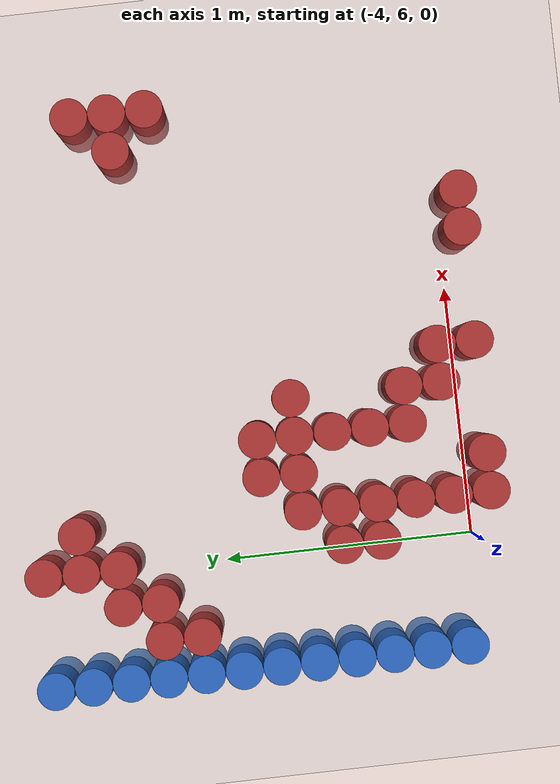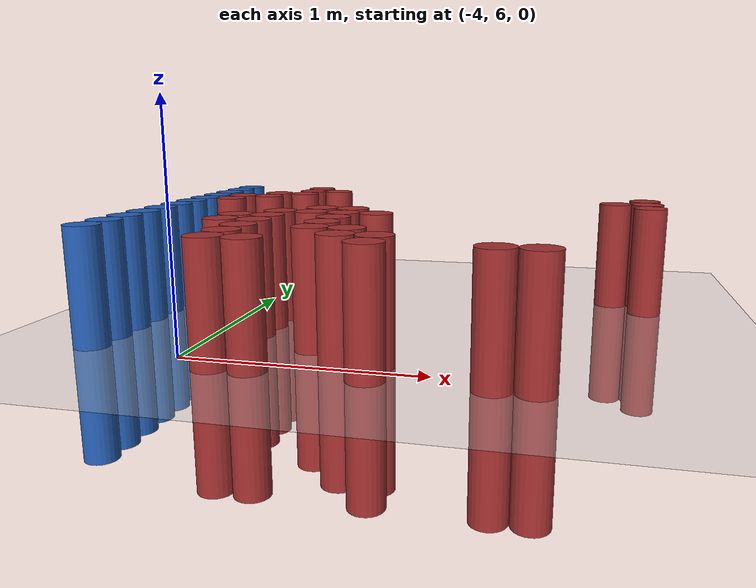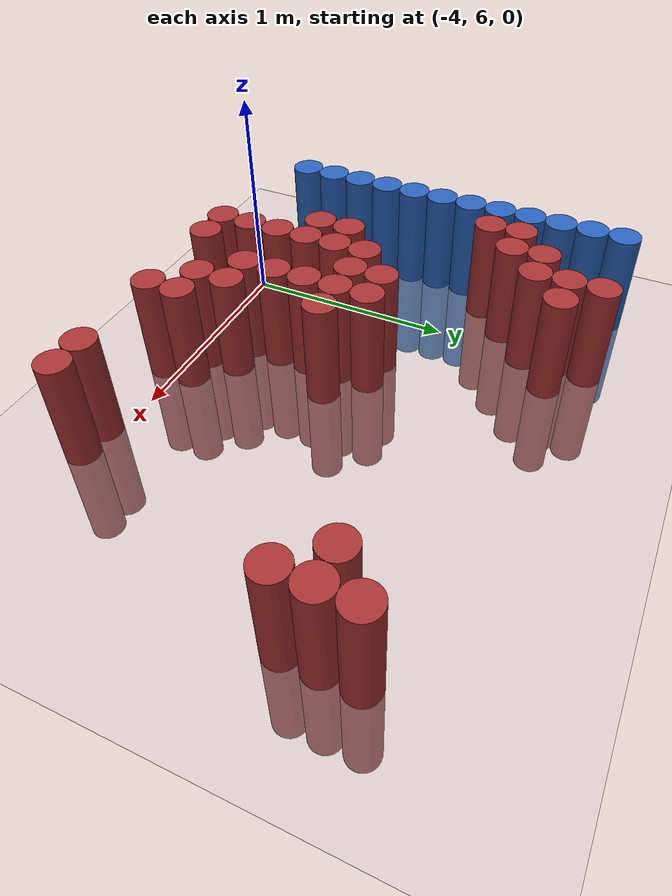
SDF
<sdf version="1.6">
 <world name="default">
  <model name="ground_plane">
   <static>1</static>
   <link name="link">
    <collision name="collision">
     <geometry><plane><normal>0 0 1</normal><size>100 100</size></plane></geometry>
     <surface><friction><ode><mu>100</mu><mu2>50</mu2></ode></friction></surface>
    </collision>
    <visual name="visual">
     <cast_shadows>0</cast_shadows>
     <geometry><plane><normal>0 0 1</normal><size>100 100</size></plane></geometry>
     <material>
      <script><uri>file://media/materials/scripts/gazebo.material</uri><name>Gazebo/Grey</name></script>
     </material>
    </visual>
   </link>
  </model>
  <model name="unit_cylinder_102">
   <static>1</static>
   <pose>-4.425000 6.075000 0.000000 0.000000 0.000000 0.000000</pose>
   <link name="link">
    <inertial>
     <mass>1</mass>
     <inertia><ixx>0.145833</ixx><ixy>0</ixy><ixz>0</ixz><iyy>0.145833</iyy><iyz>0</iyz><izz>0.125</izz></inertia>
    </inertial>
    <collision name="collision">
     <geometry><cylinder><radius>0.075000</radius><length>1</length></cylinder></geometry>
    </collision>
    <visual name="visual">
     <geometry><cylinder><radius>0.075000</radius><length>1</length></cylinder></geometry>
     <material>
      <ambient>0.152000 0.379000 0.720000 1</ambient>
      <diffuse>0.152000 0.379000 0.720000 1</diffuse>
     </material>
     <material>
      <script><name>Gazebo/Grey</name><uri>file://media/materials/scripts/gazebo.material</uri></script>
     </material>
    </visual>
   </link>
  </model>
  <model name="unit_cylinder_103">
   <static>1</static>
   <pose>-4.425000 6.225000 0.000000 0.000000 0.000000 0.000000</pose>
   <link name="link">
    <inertial>
     <mass>1</mass>
     <inertia><ixx>0.145833</ixx><ixy>0</ixy><ixz>0</ixz><iyy>0.145833</iyy><iyz>0</iyz><izz>0.125</izz></inertia>
    </inertial>
    <collision name="collision">
     <geometry><cylinder><radius>0.075000</radius><length>1</length></cylinder></geometry>
    </collision>
    <visual name="visual">
     <geometry><cylinder><radius>0.075000</radius><length>1</length></cylinder></geometry>
     <material>
      <ambient>0.152000 0.379000 0.720000 1</ambient>
      <diffuse>0.152000 0.379000 0.720000 1</diffuse>
     </material>
     <material>
      <script><name>Gazebo/Grey</name><uri>file://media/materials/scripts/gazebo.material</uri></script>
     </material>
    </visual>
   </link>
  </model>
  <model name="unit_cylinder_104">
   <static>1</static>
   <pose>-4.425000 6.375000 0.000000 0.000000 0.000000 0.000000</pose>
   <link name="link">
    <inertial>
     <mass>1</mass>
     <inertia><ixx>0.145833</ixx><ixy>0</ixy><ixz>0</ixz><iyy>0.145833</iyy><iyz>0</iyz><izz>0.125</izz></inertia>
    </inertial>
    <collision name="collision">
     <geometry><cylinder><radius>0.075000</radius><length>1</length></cylinder></geometry>
    </collision>
    <visual name="visual">
     <geometry><cylinder><radius>0.075000</radius><length>1</length></cylinder></geometry>
     <material>
      <ambient>0.152000 0.379000 0.720000 1</ambient>
      <diffuse>0.152000 0.379000 0.720000 1</diffuse>
     </material>
     <material>
      <script><name>Gazebo/Grey</name><uri>file://media/materials/scripts/gazebo.material</uri></script>
     </material>
    </visual>
   </link>
  </model>
  <model name="unit_cylinder_105">
   <static>1</static>
   <pose>-4.425000 6.525000 0.000000 0.000000 0.000000 0.000000</pose>
   <link name="link">
    <inertial>
     <mass>1</mass>
     <inertia><ixx>0.145833</ixx><ixy>0</ixy><ixz>0</ixz><iyy>0.145833</iyy><iyz>0</iyz><izz>0.125</izz></inertia>
    </inertial>
    <collision name="collision">
     <geometry><cylinder><radius>0.075000</radius><length>1</length></cylinder></geometry>
    </collision>
    <visual name="visual">
     <geometry><cylinder><radius>0.075000</radius><length>1</length></cylinder></geometry>
     <material>
      <ambient>0.152000 0.379000 0.720000 1</ambient>
      <diffuse>0.152000 0.379000 0.720000 1</diffuse>
     </material>
     <material>
      <script><name>Gazebo/Grey</name><uri>file://media/materials/scripts/gazebo.material</uri></script>
     </material>
    </visual>
   </link>
  </model>
  <model name="unit_cylinder_106">
   <static>1</static>
   <pose>-4.425000 6.675000 0.000000 0.000000 0.000000 0.000000</pose>
   <link name="link">
    <inertial>
     <mass>1</mass>
     <inertia><ixx>0.145833</ixx><ixy>0</ixy><ixz>0</ixz><iyy>0.145833</iyy><iyz>0</iyz><izz>0.125</izz></inertia>
    </inertial>
    <collision name="collision">
     <geometry><cylinder><radius>0.075000</radius><length>1</length></cylinder></geometry>
    </collision>
    <visual name="visual">
     <geometry><cylinder><radius>0.075000</radius><length>1</length></cylinder></geometry>
     <material>
      <ambient>0.152000 0.379000 0.720000 1</ambient>
      <diffuse>0.152000 0.379000 0.720000 1</diffuse>
     </material>
     <material>
      <script><name>Gazebo/Grey</name><uri>file://media/materials/scripts/gazebo.material</uri></script>
     </material>
    </visual>
   </link>
  </model>
  <model name="unit_cylinder_107">
   <static>1</static>
   <pose>-4.425000 6.825000 0.000000 0.000000 0.000000 0.000000</pose>
   <link name="link">
    <inertial>
     <mass>1</mass>
     <inertia><ixx>0.145833</ixx><ixy>0</ixy><ixz>0</ixz><iyy>0.145833</iyy><iyz>0</iyz><izz>0.125</izz></inertia>
    </inertial>
    <collision name="collision">
     <geometry><cylinder><radius>0.075000</radius><length>1</length></cylinder></geometry>
    </collision>
    <visual name="visual">
     <geometry><cylinder><radius>0.075000</radius><length>1</length></cylinder></geometry>
     <material>
      <ambient>0.152000 0.379000 0.720000 1</ambient>
      <diffuse>0.152000 0.379000 0.720000 1</diffuse>
     </material>
     <material>
      <script><name>Gazebo/Grey</name><uri>file://media/materials/scripts/gazebo.material</uri></script>
     </material>
    </visual>
   </link>
  </model>
  <model name="unit_cylinder_108">
   <static>1</static>
   <pose>-4.425000 6.975000 0.000000 0.000000 0.000000 0.000000</pose>
   <link name="link">
    <inertial>
     <mass>1</mass>
     <inertia><ixx>0.145833</ixx><ixy>0</ixy><ixz>0</ixz><iyy>0.145833</iyy><iyz>0</iyz><izz>0.125</izz></inertia>
    </inertial>
    <collision name="collision">
     <geometry><cylinder><radius>0.075000</radius><length>1</length></cylinder></geometry>
    </collision>
    <visual name="visual">
     <geometry><cylinder><radius>0.075000</radius><length>1</length></cylinder></geometry>
     <material>
      <ambient>0.152000 0.379000 0.720000 1</ambient>
      <diffuse>0.152000 0.379000 0.720000 1</diffuse>
     </material>
     <material>
      <script><name>Gazebo/Grey</name><uri>file://media/materials/scripts/gazebo.material</uri></script>
     </material>
    </visual>
   </link>
  </model>
  <model name="unit_cylinder_109">
   <static>1</static>
   <pose>-4.425000 7.125000 0.000000 0.000000 0.000000 0.000000</pose>
   <link name="link">
    <inertial>
     <mass>1</mass>
     <inertia><ixx>0.145833</ixx><ixy>0</ixy><ixz>0</ixz><iyy>0.145833</iyy><iyz>0</iyz><izz>0.125</izz></inertia>
    </inertial>
    <collision name="collision">
     <geometry><cylinder><radius>0.075000</radius><length>1</length></cylinder></geometry>
    </collision>
    <visual name="visual">
     <geometry><cylinder><radius>0.075000</radius><length>1</length></cylinder></geometry>
     <material>
      <ambient>0.152000 0.379000 0.720000 1</ambient>
      <diffuse>0.152000 0.379000 0.720000 1</diffuse>
     </material>
     <material>
      <script><name>Gazebo/Grey</name><uri>file://media/materials/scripts/gazebo.material</uri></script>
     </material>
    </visual>
   </link>
  </model>
  <model name="unit_cylinder_110">
   <static>1</static>
   <pose>-4.425000 7.275000 0.000000 0.000000 0.000000 0.000000</pose>
   <link name="link">
    <inertial>
     <mass>1</mass>
     <inertia><ixx>0.145833</ixx><ixy>0</ixy><ixz>0</ixz><iyy>0.145833</iyy><iyz>0</iyz><izz>0.125</izz></inertia>
    </inertial>
    <collision name="collision">
     <geometry><cylinder><radius>0.075000</radius><length>1</length></cylinder></geometry>
    </collision>
    <visual name="visual">
     <geometry><cylinder><radius>0.075000</radius><length>1</length></cylinder></geometry>
     <material>
      <ambient>0.152000 0.379000 0.720000 1</ambient>
      <diffuse>0.152000 0.379000 0.720000 1</diffuse>
     </material>
     <material>
      <script><name>Gazebo/Grey</name><uri>file://media/materials/scripts/gazebo.material</uri></script>
     </material>
    </visual>
   </link>
  </model>
  <model name="unit_cylinder_111">
   <static>1</static>
   <pose>-4.425000 7.425000 0.000000 0.000000 0.000000 0.000000</pose>
   <link name="link">
    <inertial>
     <mass>1</mass>
     <inertia><ixx>0.145833</ixx><ixy>0</ixy><ixz>0</ixz><iyy>0.145833</iyy><iyz>0</iyz><izz>0.125</izz></inertia>
    </inertial>
    <collision name="collision">
     <geometry><cylinder><radius>0.075000</radius><length>1</length></cylinder></geometry>
    </collision>
    <visual name="visual">
     <geometry><cylinder><radius>0.075000</radius><length>1</length></cylinder></geometry>
     <material>
      <ambient>0.152000 0.379000 0.720000 1</ambient>
      <diffuse>0.152000 0.379000 0.720000 1</diffuse>
     </material>
     <material>
      <script><name>Gazebo/Grey</name><uri>file://media/materials/scripts/gazebo.material</uri></script>
     </material>
    </visual>
   </link>
  </model>
  <model name="unit_cylinder_112">
   <static>1</static>
   <pose>-4.425000 7.575000 0.000000 0.000000 0.000000 0.000000</pose>
   <link name="link">
    <inertial>
     <mass>1</mass>
     <inertia><ixx>0.145833</ixx><ixy>0</ixy><ixz>0</ixz><iyy>0.145833</iyy><iyz>0</iyz><izz>0.125</izz></inertia>
    </inertial>
    <collision name="collision">
     <geometry><cylinder><radius>0.075000</radius><length>1</length></cylinder></geometry>
    </collision>
    <visual name="visual">
     <geometry><cylinder><radius>0.075000</radius><length>1</length></cylinder></geometry>
     <material>
      <ambient>0.152000 0.379000 0.720000 1</ambient>
      <diffuse>0.152000 0.379000 0.720000 1</diffuse>
     </material>
     <material>
      <script><name>Gazebo/Grey</name><uri>file://media/materials/scripts/gazebo.material</uri></script>
     </material>
    </visual>
   </link>
  </model>
  <model name="unit_cylinder_113">
   <static>1</static>
   <pose>-4.425000 7.725000 0.000000 0.000000 0.000000 0.000000</pose>
   <link name="link">
    <inertial>
     <mass>1</mass>
     <inertia><ixx>0.145833</ixx><ixy>0</ixy><ixz>0</ixz><iyy>0.145833</iyy><iyz>0</iyz><izz>0.125</izz></inertia>
    </inertial>
    <collision name="collision">
     <geometry><cylinder><radius>0.075000</radius><length>1</length></cylinder></geometry>
    </collision>
    <visual name="visual">
     <geometry><cylinder><radius>0.075000</radius><length>1</length></cylinder></geometry>
     <material>
      <ambient>0.152000 0.379000 0.720000 1</ambient>
      <diffuse>0.152000 0.379000 0.720000 1</diffuse>
     </material>
     <material>
      <script><name>Gazebo/Grey</name><uri>file://media/materials/scripts/gazebo.material</uri></script>
     </material>
    </visual>
   </link>
  </model>
  <model name="unit_cylinder_129">
   <static>1</static>
   <pose>-4.275000 7.125000 0.000000 0.000000 0.000000 0.000000</pose>
   <link name="link">
    <inertial>
     <mass>1</mass>
     <inertia><ixx>0.145833</ixx><ixy>0</ixy><ixz>0</ixz><iyy>0.145833</iyy><iyz>0</iyz><izz>0.125</izz></inertia>
    </inertial>
    <collision name="collision">
     <geometry><cylinder><radius>0.075000</radius><length>1</length></cylinder></geometry>
    </collision>
    <visual name="visual">
     <geometry><cylinder><radius>0.075000</radius><length>1</length></cylinder></geometry>
     <material>
      <ambient>0.648000 0.192000 0.192000 1</ambient>
      <diffuse>0.648000 0.192000 0.192000 1</diffuse>
     </material>
     <material>
      <script><name>Gazebo/Grey</name><uri>file://media/materials/scripts/gazebo.material</uri></script>
     </material>
    </visual>
   </link>
  </model>
  <model name="unit_cylinder_130">
   <static>1</static>
   <pose>-4.275000 7.275000 0.000000 0.000000 0.000000 0.000000</pose>
   <link name="link">
    <inertial>
     <mass>1</mass>
     <inertia><ixx>0.145833</ixx><ixy>0</ixy><ixz>0</ixz><iyy>0.145833</iyy><iyz>0</iyz><izz>0.125</izz></inertia>
    </inertial>
    <collision name="collision">
     <geometry><cylinder><radius>0.075000</radius><length>1</length></cylinder></geometry>
    </collision>
    <visual name="visual">
     <geometry><cylinder><radius>0.075000</radius><length>1</length></cylinder></geometry>
     <material>
      <ambient>0.648000 0.192000 0.192000 1</ambient>
      <diffuse>0.648000 0.192000 0.192000 1</diffuse>
     </material>
     <material>
      <script><name>Gazebo/Grey</name><uri>file://media/materials/scripts/gazebo.material</uri></script>
     </material>
    </visual>
   </link>
  </model>
  <model name="unit_cylinder_138">
   <static>1</static>
   <pose>-4.125000 7.275000 0.000000 0.000000 0.000000 0.000000</pose>
   <link name="link">
    <inertial>
     <mass>1</mass>
     <inertia><ixx>0.145833</ixx><ixy>0</ixy><ixz>0</ixz><iyy>0.145833</iyy><iyz>0</iyz><izz>0.125</izz></inertia>
    </inertial>
    <collision name="collision">
     <geometry><cylinder><radius>0.075000</radius><length>1</length></cylinder></geometry>
    </collision>
    <visual name="visual">
     <geometry><cylinder><radius>0.075000</radius><length>1</length></cylinder></geometry>
     <material>
      <ambient>0.648000 0.192000 0.192000 1</ambient>
      <diffuse>0.648000 0.192000 0.192000 1</diffuse>
     </material>
     <material>
      <script><name>Gazebo/Grey</name><uri>file://media/materials/scripts/gazebo.material</uri></script>
     </material>
    </visual>
   </link>
  </model>
  <model name="unit_cylinder_139">
   <static>1</static>
   <pose>-4.125000 7.425000 0.000000 0.000000 0.000000 0.000000</pose>
   <link name="link">
    <inertial>
     <mass>1</mass>
     <inertia><ixx>0.145833</ixx><ixy>0</ixy><ixz>0</ixz><iyy>0.145833</iyy><iyz>0</iyz><izz>0.125</izz></inertia>
    </inertial>
    <collision name="collision">
     <geometry><cylinder><radius>0.075000</radius><length>1</length></cylinder></geometry>
    </collision>
    <visual name="visual">
     <geometry><cylinder><radius>0.075000</radius><length>1</length></cylinder></geometry>
     <material>
      <ambient>0.648000 0.192000 0.192000 1</ambient>
      <diffuse>0.648000 0.192000 0.192000 1</diffuse>
     </material>
     <material>
      <script><name>Gazebo/Grey</name><uri>file://media/materials/scripts/gazebo.material</uri></script>
     </material>
    </visual>
   </link>
  </model>
  <model name="unit_cylinder_143">
   <static>1</static>
   <pose>-3.975000 6.375000 0.000000 0.000000 0.000000 0.000000</pose>
   <link name="link">
    <inertial>
     <mass>1</mass>
     <inertia><ixx>0.145833</ixx><ixy>0</ixy><ixz>0</ixz><iyy>0.145833</iyy><iyz>0</iyz><izz>0.125</izz></inertia>
    </inertial>
    <collision name="collision">
     <geometry><cylinder><radius>0.075000</radius><length>1</length></cylinder></geometry>
    </collision>
    <visual name="visual">
     <geometry><cylinder><radius>0.075000</radius><length>1</length></cylinder></geometry>
     <material>
      <ambient>0.648000 0.192000 0.192000 1</ambient>
      <diffuse>0.648000 0.192000 0.192000 1</diffuse>
     </material>
     <material>
      <script><name>Gazebo/Grey</name><uri>file://media/materials/scripts/gazebo.material</uri></script>
     </material>
    </visual>
   </link>
  </model>
  <model name="unit_cylinder_144">
   <static>1</static>
   <pose>-3.975000 6.525000 0.000000 0.000000 0.000000 0.000000</pose>
   <link name="link">
    <inertial>
     <mass>1</mass>
     <inertia><ixx>0.145833</ixx><ixy>0</ixy><ixz>0</ixz><iyy>0.145833</iyy><iyz>0</iyz><izz>0.125</izz></inertia>
    </inertial>
    <collision name="collision">
     <geometry><cylinder><radius>0.075000</radius><length>1</length></cylinder></geometry>
    </collision>
    <visual name="visual">
     <geometry><cylinder><radius>0.075000</radius><length>1</length></cylinder></geometry>
     <material>
      <ambient>0.648000 0.192000 0.192000 1</ambient>
      <diffuse>0.648000 0.192000 0.192000 1</diffuse>
     </material>
     <material>
      <script><name>Gazebo/Grey</name><uri>file://media/materials/scripts/gazebo.material</uri></script>
     </material>
    </visual>
   </link>
  </model>
  <model name="unit_cylinder_145">
   <static>1</static>
   <pose>-3.975000 7.425000 0.000000 0.000000 0.000000 0.000000</pose>
   <link name="link">
    <inertial>
     <mass>1</mass>
     <inertia><ixx>0.145833</ixx><ixy>0</ixy><ixz>0</ixz><iyy>0.145833</iyy><iyz>0</iyz><izz>0.125</izz></inertia>
    </inertial>
    <collision name="collision">
     <geometry><cylinder><radius>0.075000</radius><length>1</length></cylinder></geometry>
    </collision>
    <visual name="visual">
     <geometry><cylinder><radius>0.075000</radius><length>1</length></cylinder></geometry>
     <material>
      <ambient>0.648000 0.192000 0.192000 1</ambient>
      <diffuse>0.648000 0.192000 0.192000 1</diffuse>
     </material>
     <material>
      <script><name>Gazebo/Grey</name><uri>file://media/materials/scripts/gazebo.material</uri></script>
     </material>
    </visual>
   </link>
  </model>
  <model name="unit_cylinder_146">
   <static>1</static>
   <pose>-3.975000 7.575000 0.000000 0.000000 0.000000 0.000000</pose>
   <link name="link">
    <inertial>
     <mass>1</mass>
     <inertia><ixx>0.145833</ixx><ixy>0</ixy><ixz>0</ixz><iyy>0.145833</iyy><iyz>0</iyz><izz>0.125</izz></inertia>
    </inertial>
    <collision name="collision">
     <geometry><cylinder><radius>0.075000</radius><length>1</length></cylinder></geometry>
    </collision>
    <visual name="visual">
     <geometry><cylinder><radius>0.075000</radius><length>1</length></cylinder></geometry>
     <material>
      <ambient>0.648000 0.192000 0.192000 1</ambient>
      <diffuse>0.648000 0.192000 0.192000 1</diffuse>
     </material>
     <material>
      <script><name>Gazebo/Grey</name><uri>file://media/materials/scripts/gazebo.material</uri></script>
     </material>
    </visual>
   </link>
  </model>
  <model name="unit_cylinder_147">
   <static>1</static>
   <pose>-3.975000 7.725000 0.000000 0.000000 0.000000 0.000000</pose>
   <link name="link">
    <inertial>
     <mass>1</mass>
     <inertia><ixx>0.145833</ixx><ixy>0</ixy><ixz>0</ixz><iyy>0.145833</iyy><iyz>0</iyz><izz>0.125</izz></inertia>
    </inertial>
    <collision name="collision">
     <geometry><cylinder><radius>0.075000</radius><length>1</length></cylinder></geometry>
    </collision>
    <visual name="visual">
     <geometry><cylinder><radius>0.075000</radius><length>1</length></cylinder></geometry>
     <material>
      <ambient>0.648000 0.192000 0.192000 1</ambient>
      <diffuse>0.648000 0.192000 0.192000 1</diffuse>
     </material>
     <material>
      <script><name>Gazebo/Grey</name><uri>file://media/materials/scripts/gazebo.material</uri></script>
     </material>
    </visual>
   </link>
  </model>
  <model name="unit_cylinder_151">
   <static>1</static>
   <pose>-3.825000 5.925000 0.000000 0.000000 0.000000 0.000000</pose>
   <link name="link">
    <inertial>
     <mass>1</mass>
     <inertia><ixx>0.145833</ixx><ixy>0</ixy><ixz>0</ixz><iyy>0.145833</iyy><iyz>0</iyz><izz>0.125</izz></inertia>
    </inertial>
    <collision name="collision">
     <geometry><cylinder><radius>0.075000</radius><length>1</length></cylinder></geometry>
    </collision>
    <visual name="visual">
     <geometry><cylinder><radius>0.075000</radius><length>1</length></cylinder></geometry>
     <material>
      <ambient>0.648000 0.192000 0.192000 1</ambient>
      <diffuse>0.648000 0.192000 0.192000 1</diffuse>
     </material>
     <material>
      <script><name>Gazebo/Grey</name><uri>file://media/materials/scripts/gazebo.material</uri></script>
     </material>
    </visual>
   </link>
  </model>
  <model name="unit_cylinder_152">
   <static>1</static>
   <pose>-3.825000 6.075000 0.000000 0.000000 0.000000 0.000000</pose>
   <link name="link">
    <inertial>
     <mass>1</mass>
     <inertia><ixx>0.145833</ixx><ixy>0</ixy><ixz>0</ixz><iyy>0.145833</iyy><iyz>0</iyz><izz>0.125</izz></inertia>
    </inertial>
    <collision name="collision">
     <geometry><cylinder><radius>0.075000</radius><length>1</length></cylinder></geometry>
    </collision>
    <visual name="visual">
     <geometry><cylinder><radius>0.075000</radius><length>1</length></cylinder></geometry>
     <material>
      <ambient>0.648000 0.192000 0.192000 1</ambient>
      <diffuse>0.648000 0.192000 0.192000 1</diffuse>
     </material>
     <material>
      <script><name>Gazebo/Grey</name><uri>file://media/materials/scripts/gazebo.material</uri></script>
     </material>
    </visual>
   </link>
  </model>
  <model name="unit_cylinder_153">
   <static>1</static>
   <pose>-3.825000 6.225000 0.000000 0.000000 0.000000 0.000000</pose>
   <link name="link">
    <inertial>
     <mass>1</mass>
     <inertia><ixx>0.145833</ixx><ixy>0</ixy><ixz>0</ixz><iyy>0.145833</iyy><iyz>0</iyz><izz>0.125</izz></inertia>
    </inertial>
    <collision name="collision">
     <geometry><cylinder><radius>0.075000</radius><length>1</length></cylinder></geometry>
    </collision>
    <visual name="visual">
     <geometry><cylinder><radius>0.075000</radius><length>1</length></cylinder></geometry>
     <material>
      <ambient>0.648000 0.192000 0.192000 1</ambient>
      <diffuse>0.648000 0.192000 0.192000 1</diffuse>
     </material>
     <material>
      <script><name>Gazebo/Grey</name><uri>file://media/materials/scripts/gazebo.material</uri></script>
     </material>
    </visual>
   </link>
  </model>
  <model name="unit_cylinder_154">
   <static>1</static>
   <pose>-3.825000 6.375000 0.000000 0.000000 0.000000 0.000000</pose>
   <link name="link">
    <inertial>
     <mass>1</mass>
     <inertia><ixx>0.145833</ixx><ixy>0</ixy><ixz>0</ixz><iyy>0.145833</iyy><iyz>0</iyz><izz>0.125</izz></inertia>
    </inertial>
    <collision name="collision">
     <geometry><cylinder><radius>0.075000</radius><length>1</length></cylinder></geometry>
    </collision>
    <visual name="visual">
     <geometry><cylinder><radius>0.075000</radius><length>1</length></cylinder></geometry>
     <material>
      <ambient>0.648000 0.192000 0.192000 1</ambient>
      <diffuse>0.648000 0.192000 0.192000 1</diffuse>
     </material>
     <material>
      <script><name>Gazebo/Grey</name><uri>file://media/materials/scripts/gazebo.material</uri></script>
     </material>
    </visual>
   </link>
  </model>
  <model name="unit_cylinder_155">
   <static>1</static>
   <pose>-3.825000 6.525000 0.000000 0.000000 0.000000 0.000000</pose>
   <link name="link">
    <inertial>
     <mass>1</mass>
     <inertia><ixx>0.145833</ixx><ixy>0</ixy><ixz>0</ixz><iyy>0.145833</iyy><iyz>0</iyz><izz>0.125</izz></inertia>
    </inertial>
    <collision name="collision">
     <geometry><cylinder><radius>0.075000</radius><length>1</length></cylinder></geometry>
    </collision>
    <visual name="visual">
     <geometry><cylinder><radius>0.075000</radius><length>1</length></cylinder></geometry>
     <material>
      <ambient>0.648000 0.192000 0.192000 1</ambient>
      <diffuse>0.648000 0.192000 0.192000 1</diffuse>
     </material>
     <material>
      <script><name>Gazebo/Grey</name><uri>file://media/materials/scripts/gazebo.material</uri></script>
     </material>
    </visual>
   </link>
  </model>
  <model name="unit_cylinder_156">
   <static>1</static>
   <pose>-3.825000 6.675000 0.000000 0.000000 0.000000 0.000000</pose>
   <link name="link">
    <inertial>
     <mass>1</mass>
     <inertia><ixx>0.145833</ixx><ixy>0</ixy><ixz>0</ixz><iyy>0.145833</iyy><iyz>0</iyz><izz>0.125</izz></inertia>
    </inertial>
    <collision name="collision">
     <geometry><cylinder><radius>0.075000</radius><length>1</length></cylinder></geometry>
    </collision>
    <visual name="visual">
     <geometry><cylinder><radius>0.075000</radius><length>1</length></cylinder></geometry>
     <material>
      <ambient>0.648000 0.192000 0.192000 1</ambient>
      <diffuse>0.648000 0.192000 0.192000 1</diffuse>
     </material>
     <material>
      <script><name>Gazebo/Grey</name><uri>file://media/materials/scripts/gazebo.material</uri></script>
     </material>
    </visual>
   </link>
  </model>
  <model name="unit_cylinder_157">
   <static>1</static>
   <pose>-3.825000 7.575000 0.000000 0.000000 0.000000 0.000000</pose>
   <link name="link">
    <inertial>
     <mass>1</mass>
     <inertia><ixx>0.145833</ixx><ixy>0</ixy><ixz>0</ixz><iyy>0.145833</iyy><iyz>0</iyz><izz>0.125</izz></inertia>
    </inertial>
    <collision name="collision">
     <geometry><cylinder><radius>0.075000</radius><length>1</length></cylinder></geometry>
    </collision>
    <visual name="visual">
     <geometry><cylinder><radius>0.075000</radius><length>1</length></cylinder></geometry>
     <material>
      <ambient>0.648000 0.192000 0.192000 1</ambient>
      <diffuse>0.648000 0.192000 0.192000 1</diffuse>
     </material>
     <material>
      <script><name>Gazebo/Grey</name><uri>file://media/materials/scripts/gazebo.material</uri></script>
     </material>
    </visual>
   </link>
  </model>
  <model name="unit_cylinder_164">
   <static>1</static>
   <pose>-3.675000 5.925000 0.000000 0.000000 0.000000 0.000000</pose>
   <link name="link">
    <inertial>
     <mass>1</mass>
     <inertia><ixx>0.145833</ixx><ixy>0</ixy><ixz>0</ixz><iyy>0.145833</iyy><iyz>0</iyz><izz>0.125</izz></inertia>
    </inertial>
    <collision name="collision">
     <geometry><cylinder><radius>0.075000</radius><length>1</length></cylinder></geometry>
    </collision>
    <visual name="visual">
     <geometry><cylinder><radius>0.075000</radius><length>1</length></cylinder></geometry>
     <material>
      <ambient>0.648000 0.192000 0.192000 1</ambient>
      <diffuse>0.648000 0.192000 0.192000 1</diffuse>
     </material>
     <material>
      <script><name>Gazebo/Grey</name><uri>file://media/materials/scripts/gazebo.material</uri></script>
     </material>
    </visual>
   </link>
  </model>
  <model name="unit_cylinder_165">
   <static>1</static>
   <pose>-3.675000 6.675000 0.000000 0.000000 0.000000 0.000000</pose>
   <link name="link">
    <inertial>
     <mass>1</mass>
     <inertia><ixx>0.145833</ixx><ixy>0</ixy><ixz>0</ixz><iyy>0.145833</iyy><iyz>0</iyz><izz>0.125</izz></inertia>
    </inertial>
    <collision name="collision">
     <geometry><cylinder><radius>0.075000</radius><length>1</length></cylinder></geometry>
    </collision>
    <visual name="visual">
     <geometry><cylinder><radius>0.075000</radius><length>1</length></cylinder></geometry>
     <material>
      <ambient>0.648000 0.192000 0.192000 1</ambient>
      <diffuse>0.648000 0.192000 0.192000 1</diffuse>
     </material>
     <material>
      <script><name>Gazebo/Grey</name><uri>file://media/materials/scripts/gazebo.material</uri></script>
     </material>
    </visual>
   </link>
  </model>
  <model name="unit_cylinder_166">
   <static>1</static>
   <pose>-3.675000 6.825000 0.000000 0.000000 0.000000 0.000000</pose>
   <link name="link">
    <inertial>
     <mass>1</mass>
     <inertia><ixx>0.145833</ixx><ixy>0</ixy><ixz>0</ixz><iyy>0.145833</iyy><iyz>0</iyz><izz>0.125</izz></inertia>
    </inertial>
    <collision name="collision">
     <geometry><cylinder><radius>0.075000</radius><length>1</length></cylinder></geometry>
    </collision>
    <visual name="visual">
     <geometry><cylinder><radius>0.075000</radius><length>1</length></cylinder></geometry>
     <material>
      <ambient>0.648000 0.192000 0.192000 1</ambient>
      <diffuse>0.648000 0.192000 0.192000 1</diffuse>
     </material>
     <material>
      <script><name>Gazebo/Grey</name><uri>file://media/materials/scripts/gazebo.material</uri></script>
     </material>
    </visual>
   </link>
  </model>
  <model name="unit_cylinder_172">
   <static>1</static>
   <pose>-3.525000 6.225000 0.000000 0.000000 0.000000 0.000000</pose>
   <link name="link">
    <inertial>
     <mass>1</mass>
     <inertia><ixx>0.145833</ixx><ixy>0</ixy><ixz>0</ixz><iyy>0.145833</iyy><iyz>0</iyz><izz>0.125</izz></inertia>
    </inertial>
    <collision name="collision">
     <geometry><cylinder><radius>0.075000</radius><length>1</length></cylinder></geometry>
    </collision>
    <visual name="visual">
     <geometry><cylinder><radius>0.075000</radius><length>1</length></cylinder></geometry>
     <material>
      <ambient>0.648000 0.192000 0.192000 1</ambient>
      <diffuse>0.648000 0.192000 0.192000 1</diffuse>
     </material>
     <material>
      <script><name>Gazebo/Grey</name><uri>file://media/materials/scripts/gazebo.material</uri></script>
     </material>
    </visual>
   </link>
  </model>
  <model name="unit_cylinder_173">
   <static>1</static>
   <pose>-3.525000 6.375000 0.000000 0.000000 0.000000 0.000000</pose>
   <link name="link">
    <inertial>
     <mass>1</mass>
     <inertia><ixx>0.145833</ixx><ixy>0</ixy><ixz>0</ixz><iyy>0.145833</iyy><iyz>0</iyz><izz>0.125</izz></inertia>
    </inertial>
    <collision name="collision">
     <geometry><cylinder><radius>0.075000</radius><length>1</length></cylinder></geometry>
    </collision>
    <visual name="visual">
     <geometry><cylinder><radius>0.075000</radius><length>1</length></cylinder></geometry>
     <material>
      <ambient>0.648000 0.192000 0.192000 1</ambient>
      <diffuse>0.648000 0.192000 0.192000 1</diffuse>
     </material>
     <material>
      <script><name>Gazebo/Grey</name><uri>file://media/materials/scripts/gazebo.material</uri></script>
     </material>
    </visual>
   </link>
  </model>
  <model name="unit_cylinder_174">
   <static>1</static>
   <pose>-3.525000 6.525000 0.000000 0.000000 0.000000 0.000000</pose>
   <link name="link">
    <inertial>
     <mass>1</mass>
     <inertia><ixx>0.145833</ixx><ixy>0</ixy><ixz>0</ixz><iyy>0.145833</iyy><iyz>0</iyz><izz>0.125</izz></inertia>
    </inertial>
    <collision name="collision">
     <geometry><cylinder><radius>0.075000</radius><length>1</length></cylinder></geometry>
    </collision>
    <visual name="visual">
     <geometry><cylinder><radius>0.075000</radius><length>1</length></cylinder></geometry>
     <material>
      <ambient>0.648000 0.192000 0.192000 1</ambient>
      <diffuse>0.648000 0.192000 0.192000 1</diffuse>
     </material>
     <material>
      <script><name>Gazebo/Grey</name><uri>file://media/materials/scripts/gazebo.material</uri></script>
     </material>
    </visual>
   </link>
  </model>
  <model name="unit_cylinder_175">
   <static>1</static>
   <pose>-3.525000 6.675000 0.000000 0.000000 0.000000 0.000000</pose>
   <link name="link">
    <inertial>
     <mass>1</mass>
     <inertia><ixx>0.145833</ixx><ixy>0</ixy><ixz>0</ixz><iyy>0.145833</iyy><iyz>0</iyz><izz>0.125</izz></inertia>
    </inertial>
    <collision name="collision">
     <geometry><cylinder><radius>0.075000</radius><length>1</length></cylinder></geometry>
    </collision>
    <visual name="visual">
     <geometry><cylinder><radius>0.075000</radius><length>1</length></cylinder></geometry>
     <material>
      <ambient>0.648000 0.192000 0.192000 1</ambient>
      <diffuse>0.648000 0.192000 0.192000 1</diffuse>
     </material>
     <material>
      <script><name>Gazebo/Grey</name><uri>file://media/materials/scripts/gazebo.material</uri></script>
     </material>
    </visual>
   </link>
  </model>
  <model name="unit_cylinder_176">
   <static>1</static>
   <pose>-3.525000 6.825000 0.000000 0.000000 0.000000 0.000000</pose>
   <link name="link">
    <inertial>
     <mass>1</mass>
     <inertia><ixx>0.145833</ixx><ixy>0</ixy><ixz>0</ixz><iyy>0.145833</iyy><iyz>0</iyz><izz>0.125</izz></inertia>
    </inertial>
    <collision name="collision">
     <geometry><cylinder><radius>0.075000</radius><length>1</length></cylinder></geometry>
    </collision>
    <visual name="visual">
     <geometry><cylinder><radius>0.075000</radius><length>1</length></cylinder></geometry>
     <material>
      <ambient>0.648000 0.192000 0.192000 1</ambient>
      <diffuse>0.648000 0.192000 0.192000 1</diffuse>
     </material>
     <material>
      <script><name>Gazebo/Grey</name><uri>file://media/materials/scripts/gazebo.material</uri></script>
     </material>
    </visual>
   </link>
  </model>
  <model name="unit_cylinder_184">
   <static>1</static>
   <pose>-3.375000 6.075000 0.000000 0.000000 0.000000 0.000000</pose>
   <link name="link">
    <inertial>
     <mass>1</mass>
     <inertia><ixx>0.145833</ixx><ixy>0</ixy><ixz>0</ixz><iyy>0.145833</iyy><iyz>0</iyz><izz>0.125</izz></inertia>
    </inertial>
    <collision name="collision">
     <geometry><cylinder><radius>0.075000</radius><length>1</length></cylinder></geometry>
    </collision>
    <visual name="visual">
     <geometry><cylinder><radius>0.075000</radius><length>1</length></cylinder></geometry>
     <material>
      <ambient>0.648000 0.192000 0.192000 1</ambient>
      <diffuse>0.648000 0.192000 0.192000 1</diffuse>
     </material>
     <material>
      <script><name>Gazebo/Grey</name><uri>file://media/materials/scripts/gazebo.material</uri></script>
     </material>
    </visual>
   </link>
  </model>
  <model name="unit_cylinder_185">
   <static>1</static>
   <pose>-3.375000 6.225000 0.000000 0.000000 0.000000 0.000000</pose>
   <link name="link">
    <inertial>
     <mass>1</mass>
     <inertia><ixx>0.145833</ixx><ixy>0</ixy><ixz>0</ixz><iyy>0.145833</iyy><iyz>0</iyz><izz>0.125</izz></inertia>
    </inertial>
    <collision name="collision">
     <geometry><cylinder><radius>0.075000</radius><length>1</length></cylinder></geometry>
    </collision>
    <visual name="visual">
     <geometry><cylinder><radius>0.075000</radius><length>1</length></cylinder></geometry>
     <material>
      <ambient>0.648000 0.192000 0.192000 1</ambient>
      <diffuse>0.648000 0.192000 0.192000 1</diffuse>
     </material>
     <material>
      <script><name>Gazebo/Grey</name><uri>file://media/materials/scripts/gazebo.material</uri></script>
     </material>
    </visual>
   </link>
  </model>
  <model name="unit_cylinder_186">
   <static>1</static>
   <pose>-3.375000 6.675000 0.000000 0.000000 0.000000 0.000000</pose>
   <link name="link">
    <inertial>
     <mass>1</mass>
     <inertia><ixx>0.145833</ixx><ixy>0</ixy><ixz>0</ixz><iyy>0.145833</iyy><iyz>0</iyz><izz>0.125</izz></inertia>
    </inertial>
    <collision name="collision">
     <geometry><cylinder><radius>0.075000</radius><length>1</length></cylinder></geometry>
    </collision>
    <visual name="visual">
     <geometry><cylinder><radius>0.075000</radius><length>1</length></cylinder></geometry>
     <material>
      <ambient>0.648000 0.192000 0.192000 1</ambient>
      <diffuse>0.648000 0.192000 0.192000 1</diffuse>
     </material>
     <material>
      <script><name>Gazebo/Grey</name><uri>file://media/materials/scripts/gazebo.material</uri></script>
     </material>
    </visual>
   </link>
  </model>
  <model name="unit_cylinder_193">
   <static>1</static>
   <pose>-3.225000 5.925000 0.000000 0.000000 0.000000 0.000000</pose>
   <link name="link">
    <inertial>
     <mass>1</mass>
     <inertia><ixx>0.145833</ixx><ixy>0</ixy><ixz>0</ixz><iyy>0.145833</iyy><iyz>0</iyz><izz>0.125</izz></inertia>
    </inertial>
    <collision name="collision">
     <geometry><cylinder><radius>0.075000</radius><length>1</length></cylinder></geometry>
    </collision>
    <visual name="visual">
     <geometry><cylinder><radius>0.075000</radius><length>1</length></cylinder></geometry>
     <material>
      <ambient>0.648000 0.192000 0.192000 1</ambient>
      <diffuse>0.648000 0.192000 0.192000 1</diffuse>
     </material>
     <material>
      <script><name>Gazebo/Grey</name><uri>file://media/materials/scripts/gazebo.material</uri></script>
     </material>
    </visual>
   </link>
  </model>
  <model name="unit_cylinder_194">
   <static>1</static>
   <pose>-3.225000 6.075000 0.000000 0.000000 0.000000 0.000000</pose>
   <link name="link">
    <inertial>
     <mass>1</mass>
     <inertia><ixx>0.145833</ixx><ixy>0</ixy><ixz>0</ixz><iyy>0.145833</iyy><iyz>0</iyz><izz>0.125</izz></inertia>
    </inertial>
    <collision name="collision">
     <geometry><cylinder><radius>0.075000</radius><length>1</length></cylinder></geometry>
    </collision>
    <visual name="visual">
     <geometry><cylinder><radius>0.075000</radius><length>1</length></cylinder></geometry>
     <material>
      <ambient>0.648000 0.192000 0.192000 1</ambient>
      <diffuse>0.648000 0.192000 0.192000 1</diffuse>
     </material>
     <material>
      <script><name>Gazebo/Grey</name><uri>file://media/materials/scripts/gazebo.material</uri></script>
     </material>
    </visual>
   </link>
  </model>
  <model name="unit_cylinder_203">
   <static>1</static>
   <pose>-2.775000 5.925000 0.000000 0.000000 0.000000 0.000000</pose>
   <link name="link">
    <inertial>
     <mass>1</mass>
     <inertia><ixx>0.145833</ixx><ixy>0</ixy><ixz>0</ixz><iyy>0.145833</iyy><iyz>0</iyz><izz>0.125</izz></inertia>
    </inertial>
    <collision name="collision">
     <geometry><cylinder><radius>0.075000</radius><length>1</length></cylinder></geometry>
    </collision>
    <visual name="visual">
     <geometry><cylinder><radius>0.075000</radius><length>1</length></cylinder></geometry>
     <material>
      <ambient>0.648000 0.192000 0.192000 1</ambient>
      <diffuse>0.648000 0.192000 0.192000 1</diffuse>
     </material>
     <material>
      <script><name>Gazebo/Grey</name><uri>file://media/materials/scripts/gazebo.material</uri></script>
     </material>
    </visual>
   </link>
  </model>
  <model name="unit_cylinder_207">
   <static>1</static>
   <pose>-2.625000 5.925000 0.000000 0.000000 0.000000 0.000000</pose>
   <link name="link">
    <inertial>
     <mass>1</mass>
     <inertia><ixx>0.145833</ixx><ixy>0</ixy><ixz>0</ixz><iyy>0.145833</iyy><iyz>0</iyz><izz>0.125</izz></inertia>
    </inertial>
    <collision name="collision">
     <geometry><cylinder><radius>0.075000</radius><length>1</length></cylinder></geometry>
    </collision>
    <visual name="visual">
     <geometry><cylinder><radius>0.075000</radius><length>1</length></cylinder></geometry>
     <material>
      <ambient>0.648000 0.192000 0.192000 1</ambient>
      <diffuse>0.648000 0.192000 0.192000 1</diffuse>
     </material>
     <material>
      <script><name>Gazebo/Grey</name><uri>file://media/materials/scripts/gazebo.material</uri></script>
     </material>
    </visual>
   </link>
  </model>
  <model name="unit_cylinder_208">
   <static>1</static>
   <pose>-2.325000 7.275000 0.000000 0.000000 0.000000 0.000000</pose>
   <link name="link">
    <inertial>
     <mass>1</mass>
     <inertia><ixx>0.145833</ixx><ixy>0</ixy><ixz>0</ixz><iyy>0.145833</iyy><iyz>0</iyz><izz>0.125</izz></inertia>
    </inertial>
    <collision name="collision">
     <geometry><cylinder><radius>0.075000</radius><length>1</length></cylinder></geometry>
    </collision>
    <visual name="visual">
     <geometry><cylinder><radius>0.075000</radius><length>1</length></cylinder></geometry>
     <material>
      <ambient>0.648000 0.192000 0.192000 1</ambient>
      <diffuse>0.648000 0.192000 0.192000 1</diffuse>
     </material>
     <material>
      <script><name>Gazebo/Grey</name><uri>file://media/materials/scripts/gazebo.material</uri></script>
     </material>
    </visual>
   </link>
  </model>
  <model name="unit_cylinder_209">
   <static>1</static>
   <pose>-2.175000 7.125000 0.000000 0.000000 0.000000 0.000000</pose>
   <link name="link">
    <inertial>
     <mass>1</mass>
     <inertia><ixx>0.145833</ixx><ixy>0</ixy><ixz>0</ixz><iyy>0.145833</iyy><iyz>0</iyz><izz>0.125</izz></inertia>
    </inertial>
    <collision name="collision">
     <geometry><cylinder><radius>0.075000</radius><length>1</length></cylinder></geometry>
    </collision>
    <visual name="visual">
     <geometry><cylinder><radius>0.075000</radius><length>1</length></cylinder></geometry>
     <material>
      <ambient>0.648000 0.192000 0.192000 1</ambient>
      <diffuse>0.648000 0.192000 0.192000 1</diffuse>
     </material>
     <material>
      <script><name>Gazebo/Grey</name><uri>file://media/materials/scripts/gazebo.material</uri></script>
     </material>
    </visual>
   </link>
  </model>
  <model name="unit_cylinder_210">
   <static>1</static>
   <pose>-2.175000 7.275000 0.000000 0.000000 0.000000 0.000000</pose>
   <link name="link">
    <inertial>
     <mass>1</mass>
     <inertia><ixx>0.145833</ixx><ixy>0</ixy><ixz>0</ixz><iyy>0.145833</iyy><iyz>0</iyz><izz>0.125</izz></inertia>
    </inertial>
    <collision name="collision">
     <geometry><cylinder><radius>0.075000</radius><length>1</length></cylinder></geometry>
    </collision>
    <visual name="visual">
     <geometry><cylinder><radius>0.075000</radius><length>1</length></cylinder></geometry>
     <material>
      <ambient>0.648000 0.192000 0.192000 1</ambient>
      <diffuse>0.648000 0.192000 0.192000 1</diffuse>
     </material>
     <material>
      <script><name>Gazebo/Grey</name><uri>file://media/materials/scripts/gazebo.material</uri></script>
     </material>
    </visual>
   </link>
  </model>
  <model name="unit_cylinder_211">
   <static>1</static>
   <pose>-2.175000 7.425000 0.000000 0.000000 0.000000 0.000000</pose>
   <link name="link">
    <inertial>
     <mass>1</mass>
     <inertia><ixx>0.145833</ixx><ixy>0</ixy><ixz>0</ixz><iyy>0.145833</iyy><iyz>0</iyz><izz>0.125</izz></inertia>
    </inertial>
    <collision name="collision">
     <geometry><cylinder><radius>0.075000</radius><length>1</length></cylinder></geometry>
    </collision>
    <visual name="visual">
     <geometry><cylinder><radius>0.075000</radius><length>1</length></cylinder></geometry>
     <material>
      <ambient>0.648000 0.192000 0.192000 1</ambient>
      <diffuse>0.648000 0.192000 0.192000 1</diffuse>
     </material>
     <material>
      <script><name>Gazebo/Grey</name><uri>file://media/materials/scripts/gazebo.material</uri></script>
     </material>
    </visual>
   </link>
  </model>
 </world>
</sdf>
